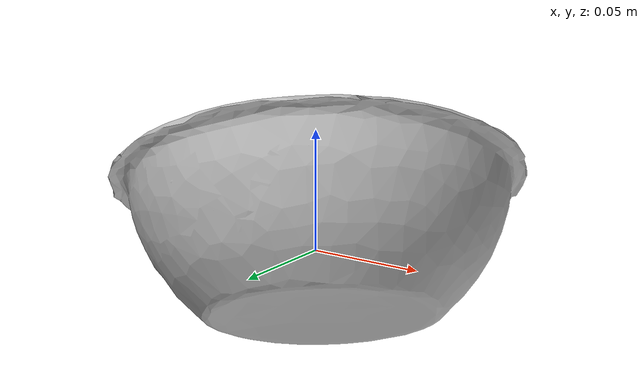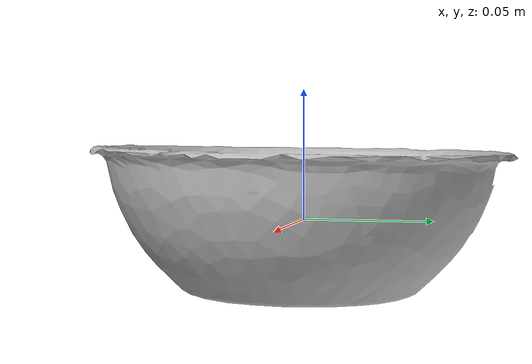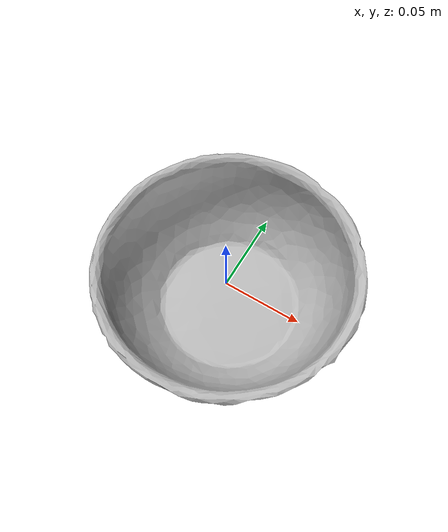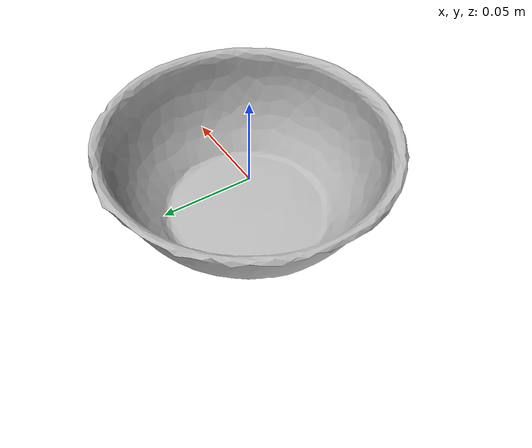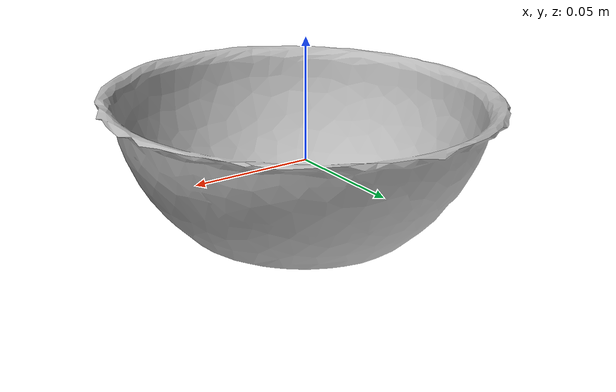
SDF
<?xml version='1.0'?>
<sdf version='1.6'>
	<model name='b_red_bowl'>
		<static>false</static>
		<pose>0 0 0 0 0 0</pose>

		<link name='link'>
			<inertial>
			<mass>0.3</mass>
			<pose>0 0 0 0 0 0</pose>
				<inertia>
					<ixx>0.0588</ixx>
					<iyy>0.0588</iyy>
					<izz>0.0588</izz>
				</inertia>
			</inertial>
			<collision name='collision'>
				<geometry>
					<mesh>
						<uri>model://b_red_bowl/b_red_bowl.dae</uri>
					</mesh>
				</geometry>
				<surface>
					<friction>
						<ode>
							<mu>0.2</mu>
							<mu2>0.2</mu2>
						</ode>
					</friction>
				</surface>
			</collision>
			<visual name='visual'>
				<geometry>
					<mesh>
						<uri>model://b_red_bowl/b_red_bowl.dae</uri>
					</mesh>
				</geometry>
			</visual>
		</link>
	</model>
</sdf>
